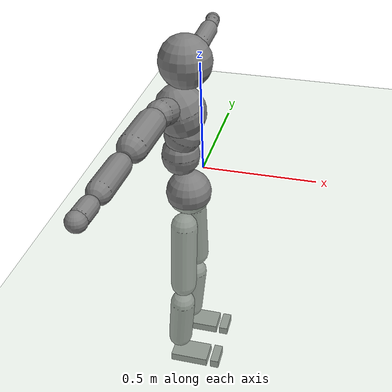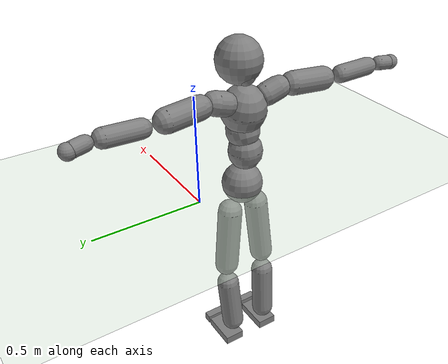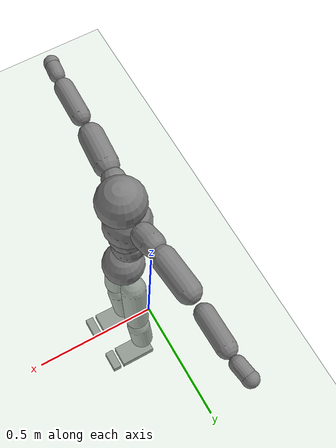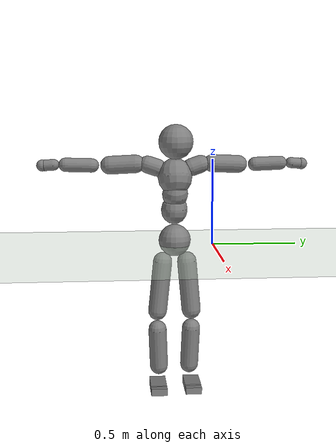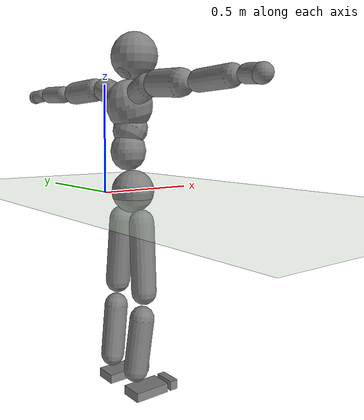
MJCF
<mujoco model="humanoid">
  <compiler coordinate="local"/>
  <statistic extent="2" center="0 0 1"/>
  <option timestep="0.00555"/>
  <default>
    <motor ctrlrange="-1 1" ctrllimited="true"/>
    <geom type="capsule" condim="1" friction="1.0 0.05 0.05" solimp=".9 .99 .003" solref=".015 1"/>
    <joint type="hinge" damping="0.1" stiffness="5" armature=".007" limited="true" solimplimit="0 .99 .01"/>
    <site size=".04" group="3"/>
    <default class="force-torque">
      <site type="box" size=".01 .01 .02" rgba="1 0 0 1"/>
    </default>
    <default class="touch">
      <site type="capsule" rgba="0 0 1 .3"/>
    </default>
  </default>
  <asset>
    <texture type="skybox" builtin="gradient" rgb1=".4 .5 .6" rgb2="0 0 0" width="100" height="100"/>
    <texture builtin="flat" height="1278" mark="cross" markrgb="1 1 1" name="texgeom" random="0.01" rgb1="0.8 0.6 0.4" rgb2="0.8 0.6 0.4" type="cube" width="127"/>
    <texture builtin="checker" height="100" name="texplane" rgb1="0 0 0" rgb2="0.8 0.8 0.8" type="2d" width="100"/>
    <material name="MatPlane" reflectance="0.5" shininess="1" specular="1" texrepeat="60 60" texture="texplane"/>
    <material name="geom" texture="texgeom" texuniform="true"/>
  </asset>
  <worldbody>
    <light cutoff="100" diffuse="1 1 1" dir="-0 0 -1.3" directional="true" exponent="1" pos="0 0 1.3" specular=".1 .1 .1"/>
    <geom conaffinity="1" condim="3" name="floor" pos="0 0 0" rgba="0.8 0.9 0.8 1" size="100 100 .2" type="plane" material="MatPlane"/>
    <body name="Pelvis" pos="-0.0018 -0.2233 0.0282">
      <freejoint name="Pelvis"/>
      <geom type="sphere" contype="1" conaffinity="1" density="4629.6296296296305" size="0.0942" pos="0.0000 0.0000 0.0000"/>
      <body name="L_Hip" pos="-0.0068 0.0695 -0.0914">
        <joint name="L_Hip_x" type="hinge" pos="0.0000 0.0000 0.0000" axis="1.0000 0.0000 0.0000" stiffness="800" damping="80" armature="0.02" range="-180.0000 180.0000"/>
        <joint name="L_Hip_y" type="hinge" pos="0.0000 0.0000 0.0000" axis="0.0000 1.0000 0.0000" stiffness="800" damping="80" armature="0.02" range="-180.0000 180.0000"/>
        <joint name="L_Hip_z" type="hinge" pos="0.0000 0.0000 0.0000" axis="0.0000 0.0000 1.0000" stiffness="800" damping="80" armature="0.02" range="-180.0000 180.0000"/>
        <geom type="capsule" contype="1" conaffinity="1" density="2040.8163265306127" fromto="-0.0004 0.0034 -0.0375 -0.0040 0.0308 -0.3377" size="0.0564"/>
        <body name="L_Knee" pos="-0.0045 0.0343 -0.3752">
          <joint name="L_Knee_x" type="hinge" pos="0.0000 0.0000 0.0000" axis="1.0000 0.0000 0.0000" stiffness="800" damping="80" armature="0.02" range="-180.0000 180.0000"/>
          <joint name="L_Knee_y" type="hinge" pos="0.0000 0.0000 0.0000" axis="0.0000 1.0000 0.0000" stiffness="800" damping="80" armature="0.02" range="-180.0000 180.0000"/>
          <joint name="L_Knee_z" type="hinge" pos="0.0000 0.0000 0.0000" axis="0.0000 0.0000 1.0000" stiffness="800" damping="80" armature="0.02" range="-180.0000 180.0000"/>
          <geom type="capsule" contype="1" conaffinity="1" density="1234.567901234568" fromto="-0.0087 -0.0027 -0.0796 -0.0350 -0.0109 -0.3184" size="0.0541"/>
          <body name="L_Ankle" pos="-0.0437 -0.0136 -0.3980">
            <joint name="L_Ankle_x" type="hinge" pos="0.0000 0.0000 0.0000" axis="1.0000 0.0000 0.0000" stiffness="800" damping="80" armature="0.02" range="-180.0000 180.0000"/>
            <joint name="L_Ankle_y" type="hinge" pos="0.0000 0.0000 0.0000" axis="0.0000 1.0000 0.0000" stiffness="800" damping="80" armature="0.02" range="-180.0000 180.0000"/>
            <joint name="L_Ankle_z" type="hinge" pos="0.0000 0.0000 0.0000" axis="0.0000 0.0000 1.0000" stiffness="800" damping="80" armature="0.02" range="-180.0000 180.0000"/>
            <geom type="box" contype="1" conaffinity="1" density="1000" pos="0.0596 0.0132 -0.0279" size="0.0850 0.0483 0.0208" quat="1.0000 0.0000 0.0000 0.0000"/>
            <body name="L_Toe" pos="0.1193 0.0264 -0.0558">
              <joint name="L_Toe_x" type="hinge" pos="0.0000 0.0000 0.0000" axis="1.0000 0.0000 0.0000" stiffness="500" damping="50" armature="0.02" range="-180.0000 180.0000"/>
              <joint name="L_Toe_y" type="hinge" pos="0.0000 0.0000 0.0000" axis="0.0000 1.0000 0.0000" stiffness="500" damping="50" armature="0.02" range="-180.0000 180.0000"/>
              <joint name="L_Toe_z" type="hinge" pos="0.0000 0.0000 0.0000" axis="0.0000 0.0000 1.0000" stiffness="500" damping="50" armature="0.02" range="-180.0000 180.0000"/>
              <geom type="box" contype="1" conaffinity="1" density="1000" pos="0.0606 -0.0132 0.0270" size="0.0202 0.0478 0.0200" quat="1.0000 0.0000 0.0000 0.0000"/>
            </body>
          </body>
        </body>
      </body>
      <body name="R_Hip" pos="-0.0043 -0.0677 -0.0905">
        <joint name="R_Hip_x" type="hinge" pos="0.0000 0.0000 0.0000" axis="1.0000 0.0000 0.0000" stiffness="800" damping="80" armature="0.02" range="-180.0000 180.0000"/>
        <joint name="R_Hip_y" type="hinge" pos="0.0000 0.0000 0.0000" axis="0.0000 1.0000 0.0000" stiffness="800" damping="80" armature="0.02" range="-180.0000 180.0000"/>
        <joint name="R_Hip_z" type="hinge" pos="0.0000 0.0000 0.0000" axis="0.0000 0.0000 1.0000" stiffness="800" damping="80" armature="0.02" range="-180.0000 180.0000"/>
        <geom type="capsule" contype="1" conaffinity="1" density="2040.8163265306127" fromto="-0.0009 -0.0038 -0.0383 -0.0080 -0.0345 -0.3443" size="0.0554"/>
        <body name="R_Knee" pos="-0.0089 -0.0383 -0.3826">
          <joint name="R_Knee_x" type="hinge" pos="0.0000 0.0000 0.0000" axis="1.0000 0.0000 0.0000" stiffness="800" damping="80" armature="0.02" range="-180.0000 180.0000"/>
          <joint name="R_Knee_y" type="hinge" pos="0.0000 0.0000 0.0000" axis="0.0000 1.0000 0.0000" stiffness="800" damping="80" armature="0.02" range="-180.0000 180.0000"/>
          <joint name="R_Knee_z" type="hinge" pos="0.0000 0.0000 0.0000" axis="0.0000 0.0000 1.0000" stiffness="800" damping="80" armature="0.02" range="-180.0000 180.0000"/>
          <geom type="capsule" contype="1" conaffinity="1" density="1234.567901234568" fromto="-0.0085 0.0032 -0.0797 -0.0338 0.0126 -0.3187" size="0.0541"/>
          <body name="R_Ankle" pos="-0.0423 0.0158 -0.3984">
            <joint name="R_Ankle_x" type="hinge" pos="0.0000 0.0000 0.0000" axis="1.0000 0.0000 0.0000" stiffness="800" damping="80" armature="0.02" range="-180.0000 180.0000"/>
            <joint name="R_Ankle_y" type="hinge" pos="0.0000 0.0000 0.0000" axis="0.0000 1.0000 0.0000" stiffness="800" damping="80" armature="0.02" range="-180.0000 180.0000"/>
            <joint name="R_Ankle_z" type="hinge" pos="0.0000 0.0000 0.0000" axis="0.0000 0.0000 1.0000" stiffness="800" damping="80" armature="0.02" range="-180.0000 180.0000"/>
            <geom type="box" contype="1" conaffinity="1" density="1000" pos="0.0617 -0.0127 -0.0241" size="0.0865 0.0483 0.0208" quat="1.0000 0.0000 0.0000 0.0000"/>
            <body name="R_Toe" pos="0.1233 -0.0254 -0.0481">
              <joint name="R_Toe_x" type="hinge" pos="0.0000 0.0000 0.0000" axis="1.0000 0.0000 0.0000" stiffness="500" damping="50" armature="0.02" range="-180.0000 180.0000"/>
              <joint name="R_Toe_y" type="hinge" pos="0.0000 0.0000 0.0000" axis="0.0000 1.0000 0.0000" stiffness="500" damping="50" armature="0.02" range="-180.0000 180.0000"/>
              <joint name="R_Toe_z" type="hinge" pos="0.0000 0.0000 0.0000" axis="0.0000 0.0000 1.0000" stiffness="500" damping="50" armature="0.02" range="-180.0000 180.0000"/>
              <geom type="box" contype="1" conaffinity="1" density="1000" pos="0.0627 0.0127 0.0249" size="0.0195 0.0479 0.0216" quat="1.0000 0.0000 0.0000 0.0000"/>
            </body>
          </body>
        </body>
      </body>
      <body name="Torso" pos="-0.0267 -0.0025 0.1090">
        <joint name="Torso_x" type="hinge" pos="0.0000 0.0000 0.0000" axis="1.0000 0.0000 0.0000" stiffness="1000" damping="100" armature="0.02" range="-180.0000 180.0000"/>
        <joint name="Torso_y" type="hinge" pos="0.0000 0.0000 0.0000" axis="0.0000 1.0000 0.0000" stiffness="1000" damping="100" armature="0.02" range="-180.0000 180.0000"/>
        <joint name="Torso_z" type="hinge" pos="0.0000 0.0000 0.0000" axis="0.0000 0.0000 1.0000" stiffness="1000" damping="100" armature="0.02" range="-180.0000 180.0000"/>
        <geom type="capsule" contype="1" conaffinity="1" density="2040.8163265306127" fromto="0.0005 0.0025 0.0608 0.0006 0.0030 0.0743" size="0.0769"/>
        <body name="Spine" pos="0.0011 0.0055 0.1352">
          <joint name="Spine_x" type="hinge" pos="0.0000 0.0000 0.0000" axis="1.0000 0.0000 0.0000" stiffness="1000" damping="100" armature="0.02" range="-180.0000 180.0000"/>
          <joint name="Spine_y" type="hinge" pos="0.0000 0.0000 0.0000" axis="0.0000 1.0000 0.0000" stiffness="1000" damping="100" armature="0.02" range="-180.0000 180.0000"/>
          <joint name="Spine_z" type="hinge" pos="0.0000 0.0000 0.0000" axis="0.0000 0.0000 1.0000" stiffness="1000" damping="100" armature="0.02" range="-180.0000 180.0000"/>
          <geom type="capsule" contype="1" conaffinity="1" density="2040.8163265306127" fromto="0.0114 0.0007 0.0238 0.0140 0.0008 0.0291" size="0.0755"/>
          <body name="Chest" pos="0.0254 0.0015 0.0529">
            <joint name="Chest_x" type="hinge" pos="0.0000 0.0000 0.0000" axis="1.0000 0.0000 0.0000" stiffness="1000" damping="100" armature="0.02" range="-180.0000 180.0000"/>
            <joint name="Chest_y" type="hinge" pos="0.0000 0.0000 0.0000" axis="0.0000 1.0000 0.0000" stiffness="1000" damping="100" armature="0.02" range="-180.0000 180.0000"/>
            <joint name="Chest_z" type="hinge" pos="0.0000 0.0000 0.0000" axis="0.0000 0.0000 1.0000" stiffness="1000" damping="100" armature="0.02" range="-180.0000 180.0000"/>
            <geom type="capsule" contype="1" conaffinity="1" density="2040.8163265306127" fromto="-0.0173 -0.0009 0.0682 -0.0212 -0.0010 0.0833" size="0.1002"/>
            <body name="Neck" pos="-0.0429 -0.0028 0.2139">
              <joint name="Neck_x" type="hinge" pos="0.0000 0.0000 0.0000" axis="1.0000 0.0000 0.0000" stiffness="500" damping="50" armature="0.02" range="-180.0000 180.0000"/>
              <joint name="Neck_y" type="hinge" pos="0.0000 0.0000 0.0000" axis="0.0000 1.0000 0.0000" stiffness="500" damping="50" armature="0.02" range="-180.0000 180.0000"/>
              <joint name="Neck_z" type="hinge" pos="0.0000 0.0000 0.0000" axis="0.0000 0.0000 1.0000" stiffness="500" damping="50" armature="0.02" range="-180.0000 180.0000"/>
              <geom type="capsule" contype="1" conaffinity="1" density="1000" fromto="0.0103 0.0010 0.0130 0.0411 0.0041 0.0520" size="0.0436"/>
              <body name="Head" pos="0.0513 0.0052 0.0650">
                <joint name="Head_x" type="hinge" pos="0.0000 0.0000 0.0000" axis="1.0000 0.0000 0.0000" stiffness="500" damping="50" armature="0.02" range="-180.0000 180.0000"/>
                <joint name="Head_y" type="hinge" pos="0.0000 0.0000 0.0000" axis="0.0000 1.0000 0.0000" stiffness="500" damping="50" armature="0.02" range="-180.0000 180.0000"/>
                <joint name="Head_z" type="hinge" pos="0.0000 0.0000 0.0000" axis="0.0000 0.0000 1.0000" stiffness="500" damping="50" armature="0.02" range="-180.0000 180.0000"/>
                <geom type="sphere" contype="1" conaffinity="1" density="1000" size="0.1011" pos="0.0000 0.0000 0.0000"/>
              </body>
            </body>
            <body name="L_Thorax" pos="-0.0341 0.0788 0.1217">
              <joint name="L_Thorax_x" type="hinge" pos="0.0000 0.0000 0.0000" axis="1.0000 0.0000 0.0000" stiffness="500" damping="50" armature="0.02" range="-180.0000 180.0000"/>
              <joint name="L_Thorax_y" type="hinge" pos="0.0000 0.0000 0.0000" axis="0.0000 1.0000 0.0000" stiffness="500" damping="50" armature="0.02" range="-180.0000 180.0000"/>
              <joint name="L_Thorax_z" type="hinge" pos="0.0000 0.0000 0.0000" axis="0.0000 0.0000 1.0000" stiffness="500" damping="50" armature="0.02" range="-180.0000 180.0000"/>
              <geom type="capsule" contype="1" conaffinity="1" density="1000" fromto="-0.0018 0.0182 0.0061 -0.0071 0.0728 0.0244" size="0.0521"/>
              <body name="L_Shoulder" pos="-0.0089 0.0910 0.0305">
                <joint name="L_Shoulder_x" type="hinge" pos="0.0000 0.0000 0.0000" axis="1.0000 0.0000 0.0000" stiffness="500" damping="50" armature="0.02" range="-180.0000 180.0000"/>
                <joint name="L_Shoulder_y" type="hinge" pos="0.0000 0.0000 0.0000" axis="0.0000 1.0000 0.0000" stiffness="500" damping="50" armature="0.02" range="-180.0000 180.0000"/>
                <joint name="L_Shoulder_z" type="hinge" pos="0.0000 0.0000 0.0000" axis="0.0000 0.0000 1.0000" stiffness="500" damping="50" armature="0.02" range="-180.0000 180.0000"/>
                <geom type="capsule" contype="1" conaffinity="1" density="1000" fromto="-0.0055 0.0519 -0.0026 -0.0220 0.2077 -0.0102" size="0.0517"/>
                <body name="L_Elbow" pos="-0.0275 0.2596 -0.0128">
                  <joint name="L_Elbow_x" type="hinge" pos="0.0000 0.0000 0.0000" axis="1.0000 0.0000 0.0000" stiffness="500" damping="50" armature="0.02" range="-180.0000 180.0000"/>
                  <joint name="L_Elbow_y" type="hinge" pos="0.0000 0.0000 0.0000" axis="0.0000 1.0000 0.0000" stiffness="500" damping="50" armature="0.02" range="-180.0000 180.0000"/>
                  <joint name="L_Elbow_z" type="hinge" pos="0.0000 0.0000 0.0000" axis="0.0000 0.0000 1.0000" stiffness="500" damping="50" armature="0.02" range="-180.0000 180.0000"/>
                  <geom type="capsule" contype="1" conaffinity="1" density="1000" fromto="-0.0002 0.0498 0.0018 -0.0009 0.1994 0.0072" size="0.0405"/>
                  <body name="L_Wrist" pos="-0.0012 0.2492 0.0090">
                    <joint name="L_Wrist_x" type="hinge" pos="0.0000 0.0000 0.0000" axis="1.0000 0.0000 0.0000" stiffness="300" damping="30" armature="0.02" range="-180.0000 180.0000"/>
                    <joint name="L_Wrist_y" type="hinge" pos="0.0000 0.0000 0.0000" axis="0.0000 1.0000 0.0000" stiffness="300" damping="30" armature="0.02" range="-180.0000 180.0000"/>
                    <joint name="L_Wrist_z" type="hinge" pos="0.0000 0.0000 0.0000" axis="0.0000 0.0000 1.0000" stiffness="300" damping="30" armature="0.02" range="-180.0000 180.0000"/>
                    <geom type="capsule" contype="1" conaffinity="1" density="1000" fromto="-0.0030 0.0168 -0.0016 -0.0120 0.0672 -0.0065" size="0.0318"/>
                    <body name="L_Hand" pos="-0.0149 0.0840 -0.0082">
                      <joint name="L_Hand_x" type="hinge" pos="0.0000 0.0000 0.0000" axis="1.0000 0.0000 0.0000" stiffness="300" damping="30" armature="0.02" range="-180.0000 180.0000"/>
                      <joint name="L_Hand_y" type="hinge" pos="0.0000 0.0000 0.0000" axis="0.0000 1.0000 0.0000" stiffness="300" damping="30" armature="0.02" range="-180.0000 180.0000"/>
                      <joint name="L_Hand_z" type="hinge" pos="0.0000 0.0000 0.0000" axis="0.0000 0.0000 1.0000" stiffness="300" damping="30" armature="0.02" range="-180.0000 180.0000"/>
                      <geom type="sphere" contype="1" conaffinity="1" density="1000" size="0.0337" pos="0.0000 0.0000 0.0000"/>
                    </body>
                  </body>
                </body>
              </body>
            </body>
            <body name="R_Thorax" pos="-0.0386 -0.0818 0.1188">
              <joint name="R_Thorax_x" type="hinge" pos="0.0000 0.0000 0.0000" axis="1.0000 0.0000 0.0000" stiffness="500" damping="50" armature="0.02" range="-180.0000 180.0000"/>
              <joint name="R_Thorax_y" type="hinge" pos="0.0000 0.0000 0.0000" axis="0.0000 1.0000 0.0000" stiffness="500" damping="50" armature="0.02" range="-180.0000 180.0000"/>
              <joint name="R_Thorax_z" type="hinge" pos="0.0000 0.0000 0.0000" axis="0.0000 0.0000 1.0000" stiffness="500" damping="50" armature="0.02" range="-180.0000 180.0000"/>
              <geom type="capsule" contype="1" conaffinity="1" density="1000" fromto="-0.0018 -0.0192 0.0065 -0.0073 -0.0768 0.0260" size="0.0511"/>
              <body name="R_Shoulder" pos="-0.0091 -0.0960 0.0326">
                <joint name="R_Shoulder_x" type="hinge" pos="0.0000 0.0000 0.0000" axis="1.0000 0.0000 0.0000" stiffness="500" damping="50" armature="0.02" range="-180.0000 180.0000"/>
                <joint name="R_Shoulder_y" type="hinge" pos="0.0000 0.0000 0.0000" axis="0.0000 1.0000 0.0000" stiffness="500" damping="50" armature="0.02" range="-180.0000 180.0000"/>
                <joint name="R_Shoulder_z" type="hinge" pos="0.0000 0.0000 0.0000" axis="0.0000 0.0000 1.0000" stiffness="500" damping="50" armature="0.02" range="-180.0000 180.0000"/>
                <geom type="capsule" contype="1" conaffinity="1" density="1000" fromto="-0.0043 -0.0507 -0.0027 -0.0171 -0.2030 -0.0107" size="0.0531"/>
                <body name="R_Elbow" pos="-0.0214 -0.2537 -0.0133">
                  <joint name="R_Elbow_x" type="hinge" pos="0.0000 0.0000 0.0000" axis="1.0000 0.0000 0.0000" stiffness="500" damping="50" armature="0.02" range="-180.0000 180.0000"/>
                  <joint name="R_Elbow_y" type="hinge" pos="0.0000 0.0000 0.0000" axis="0.0000 1.0000 0.0000" stiffness="500" damping="50" armature="0.02" range="-180.0000 180.0000"/>
                  <joint name="R_Elbow_z" type="hinge" pos="0.0000 0.0000 0.0000" axis="0.0000 0.0000 1.0000" stiffness="500" damping="50" armature="0.02" range="-180.0000 180.0000"/>
                  <geom type="capsule" contype="1" conaffinity="1" density="1000" fromto="-0.0011 -0.0511 0.0016 -0.0044 -0.2042 0.0062" size="0.0408"/>
                  <body name="R_Wrist" pos="-0.0056 -0.2553 0.0078">
                    <joint name="R_Wrist_x" type="hinge" pos="0.0000 0.0000 0.0000" axis="1.0000 0.0000 0.0000" stiffness="300" damping="30" armature="0.02" range="-180.0000 180.0000"/>
                    <joint name="R_Wrist_y" type="hinge" pos="0.0000 0.0000 0.0000" axis="0.0000 1.0000 0.0000" stiffness="300" damping="30" armature="0.02" range="-180.0000 180.0000"/>
                    <joint name="R_Wrist_z" type="hinge" pos="0.0000 0.0000 0.0000" axis="0.0000 0.0000 1.0000" stiffness="300" damping="30" armature="0.02" range="-180.0000 180.0000"/>
                    <geom type="capsule" contype="1" conaffinity="1" density="1000" fromto="-0.0021 -0.0169 -0.0012 -0.0083 -0.0677 -0.0049" size="0.0326"/>
                    <body name="R_Hand" pos="-0.0103 -0.0846 -0.0061">
                      <joint name="R_Hand_x" type="hinge" pos="0.0000 0.0000 0.0000" axis="1.0000 0.0000 0.0000" stiffness="300" damping="30" armature="0.02" range="-180.0000 180.0000"/>
                      <joint name="R_Hand_y" type="hinge" pos="0.0000 0.0000 0.0000" axis="0.0000 1.0000 0.0000" stiffness="300" damping="30" armature="0.02" range="-180.0000 180.0000"/>
                      <joint name="R_Hand_z" type="hinge" pos="0.0000 0.0000 0.0000" axis="0.0000 0.0000 1.0000" stiffness="300" damping="30" armature="0.02" range="-180.0000 180.0000"/>
                      <geom type="sphere" contype="1" conaffinity="1" density="1000" size="0.0340" pos="0.0000 0.0000 0.0000"/>
                    </body>
                  </body>
                </body>
              </body>
            </body>
          </body>
        </body>
      </body>
    </body>
  </worldbody>
  <actuator>
    <motor name="L_Hip_x" joint="L_Hip_x" gear="500"/>
    <motor name="L_Hip_y" joint="L_Hip_y" gear="500"/>
    <motor name="L_Hip_z" joint="L_Hip_z" gear="500"/>
    <motor name="L_Knee_x" joint="L_Knee_x" gear="500"/>
    <motor name="L_Knee_y" joint="L_Knee_y" gear="500"/>
    <motor name="L_Knee_z" joint="L_Knee_z" gear="500"/>
    <motor name="L_Ankle_x" joint="L_Ankle_x" gear="500"/>
    <motor name="L_Ankle_y" joint="L_Ankle_y" gear="500"/>
    <motor name="L_Ankle_z" joint="L_Ankle_z" gear="500"/>
    <motor name="L_Toe_x" joint="L_Toe_x" gear="500"/>
    <motor name="L_Toe_y" joint="L_Toe_y" gear="500"/>
    <motor name="L_Toe_z" joint="L_Toe_z" gear="500"/>
    <motor name="R_Hip_x" joint="R_Hip_x" gear="500"/>
    <motor name="R_Hip_y" joint="R_Hip_y" gear="500"/>
    <motor name="R_Hip_z" joint="R_Hip_z" gear="500"/>
    <motor name="R_Knee_x" joint="R_Knee_x" gear="500"/>
    <motor name="R_Knee_y" joint="R_Knee_y" gear="500"/>
    <motor name="R_Knee_z" joint="R_Knee_z" gear="500"/>
    <motor name="R_Ankle_x" joint="R_Ankle_x" gear="500"/>
    <motor name="R_Ankle_y" joint="R_Ankle_y" gear="500"/>
    <motor name="R_Ankle_z" joint="R_Ankle_z" gear="500"/>
    <motor name="R_Toe_x" joint="R_Toe_x" gear="500"/>
    <motor name="R_Toe_y" joint="R_Toe_y" gear="500"/>
    <motor name="R_Toe_z" joint="R_Toe_z" gear="500"/>
    <motor name="Torso_x" joint="Torso_x" gear="500"/>
    <motor name="Torso_y" joint="Torso_y" gear="500"/>
    <motor name="Torso_z" joint="Torso_z" gear="500"/>
    <motor name="Spine_x" joint="Spine_x" gear="500"/>
    <motor name="Spine_y" joint="Spine_y" gear="500"/>
    <motor name="Spine_z" joint="Spine_z" gear="500"/>
    <motor name="Chest_x" joint="Chest_x" gear="500"/>
    <motor name="Chest_y" joint="Chest_y" gear="500"/>
    <motor name="Chest_z" joint="Chest_z" gear="500"/>
    <motor name="Neck_x" joint="Neck_x" gear="500"/>
    <motor name="Neck_y" joint="Neck_y" gear="500"/>
    <motor name="Neck_z" joint="Neck_z" gear="500"/>
    <motor name="Head_x" joint="Head_x" gear="500"/>
    <motor name="Head_y" joint="Head_y" gear="500"/>
    <motor name="Head_z" joint="Head_z" gear="500"/>
    <motor name="L_Thorax_x" joint="L_Thorax_x" gear="500"/>
    <motor name="L_Thorax_y" joint="L_Thorax_y" gear="500"/>
    <motor name="L_Thorax_z" joint="L_Thorax_z" gear="500"/>
    <motor name="L_Shoulder_x" joint="L_Shoulder_x" gear="500"/>
    <motor name="L_Shoulder_y" joint="L_Shoulder_y" gear="500"/>
    <motor name="L_Shoulder_z" joint="L_Shoulder_z" gear="500"/>
    <motor name="L_Elbow_x" joint="L_Elbow_x" gear="500"/>
    <motor name="L_Elbow_y" joint="L_Elbow_y" gear="500"/>
    <motor name="L_Elbow_z" joint="L_Elbow_z" gear="500"/>
    <motor name="L_Wrist_x" joint="L_Wrist_x" gear="500"/>
    <motor name="L_Wrist_y" joint="L_Wrist_y" gear="500"/>
    <motor name="L_Wrist_z" joint="L_Wrist_z" gear="500"/>
    <motor name="L_Hand_x" joint="L_Hand_x" gear="500"/>
    <motor name="L_Hand_y" joint="L_Hand_y" gear="500"/>
    <motor name="L_Hand_z" joint="L_Hand_z" gear="500"/>
    <motor name="R_Thorax_x" joint="R_Thorax_x" gear="500"/>
    <motor name="R_Thorax_y" joint="R_Thorax_y" gear="500"/>
    <motor name="R_Thorax_z" joint="R_Thorax_z" gear="500"/>
    <motor name="R_Shoulder_x" joint="R_Shoulder_x" gear="500"/>
    <motor name="R_Shoulder_y" joint="R_Shoulder_y" gear="500"/>
    <motor name="R_Shoulder_z" joint="R_Shoulder_z" gear="500"/>
    <motor name="R_Elbow_x" joint="R_Elbow_x" gear="500"/>
    <motor name="R_Elbow_y" joint="R_Elbow_y" gear="500"/>
    <motor name="R_Elbow_z" joint="R_Elbow_z" gear="500"/>
    <motor name="R_Wrist_x" joint="R_Wrist_x" gear="500"/>
    <motor name="R_Wrist_y" joint="R_Wrist_y" gear="500"/>
    <motor name="R_Wrist_z" joint="R_Wrist_z" gear="500"/>
    <motor name="R_Hand_x" joint="R_Hand_x" gear="500"/>
    <motor name="R_Hand_y" joint="R_Hand_y" gear="500"/>
    <motor name="R_Hand_z" joint="R_Hand_z" gear="500"/>
  </actuator>
  <contact/>
  <size njmax="700" nconmax="700"/>
</mujoco>
